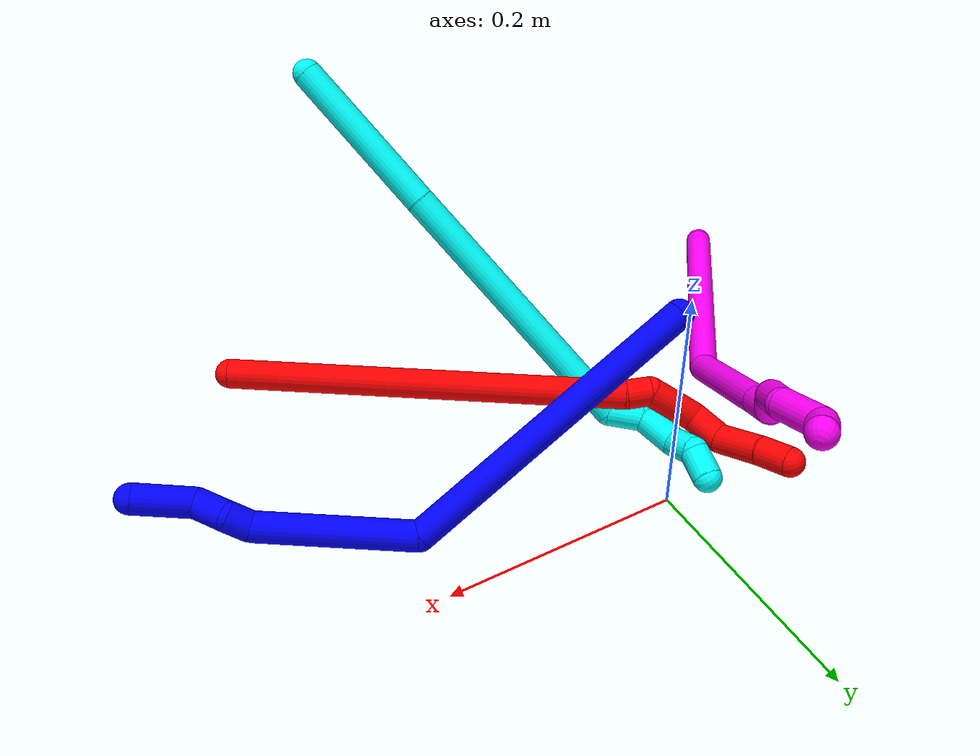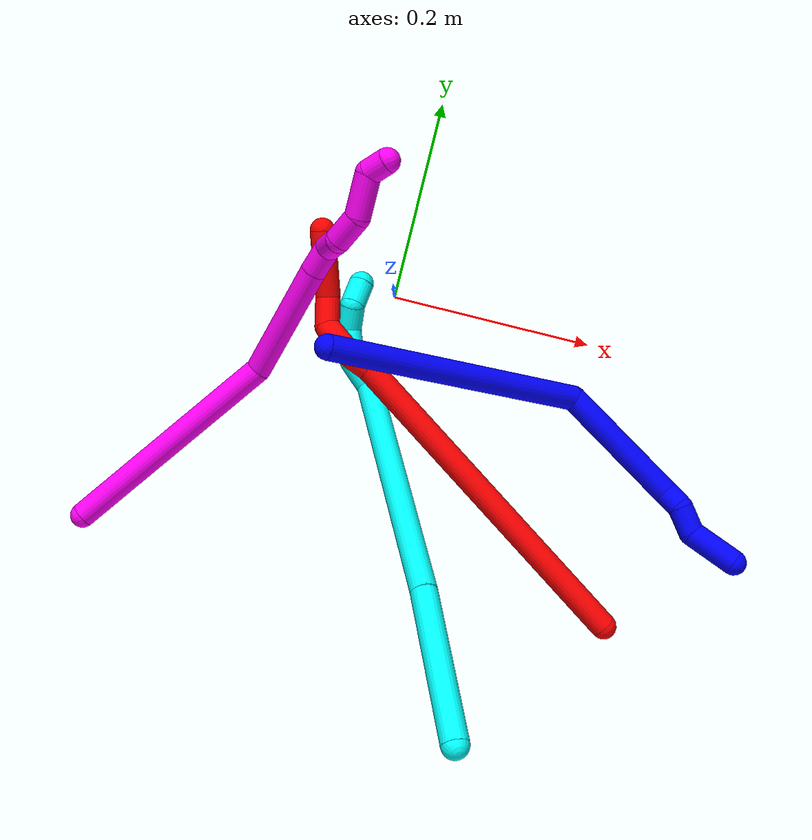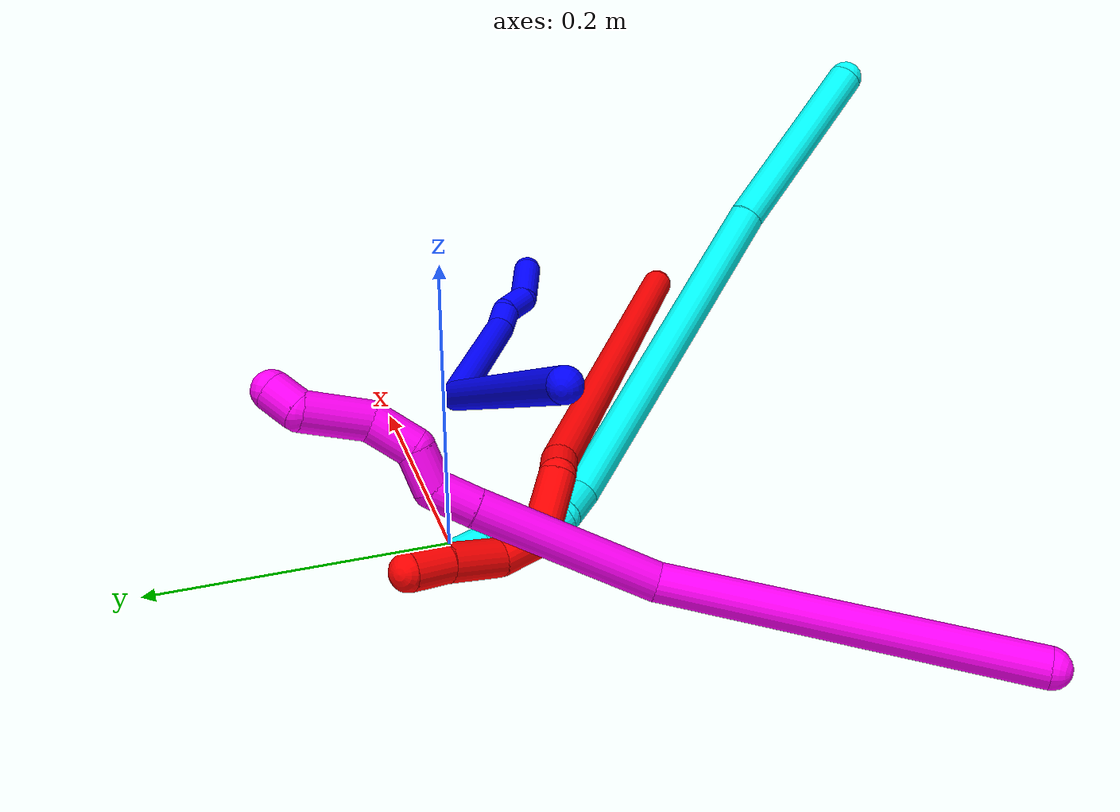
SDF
<sdf version="1.7">
 <world name="default">
  <model name="1">
   <static>0</static>
   <link name="1">
    <collision name="collision-cylinder-e_1_1_4">
     <pose>0.060408 -0.050287 0.110456 0.427228 0.461837 0.101915</pose>
     <geometry><cylinder><radius>0.0125</radius><length>0.271135</length></cylinder></geometry>
     <surface>
      <friction><ode><mu>1.16</mu><mu2>1.16</mu2><slip1>0</slip1><slip2>0</slip2></ode></friction>
      <contact><ode><kp>1e+06</kp><kd>1</kd><max_vel>0</max_vel><min_depth>0.001</min_depth></ode></contact>
     </surface>
    </collision>
    <visual name="visual-cylinder-e_1_1_4">
     <pose>0.060408 -0.050287 0.110456 0.427228 0.461837 0.101915</pose>
     <geometry><cylinder><radius>0.0125</radius><length>0.271135</length></cylinder></geometry>
     <material><ambient>0 0 1 1</ambient></material>
    </visual>
    <collision name="collision-cylinder-e_2_4_5">
     <pose>0.118556 -0.089332 0.285634 -0.171987 -0.034383 0.002964</pose>
     <geometry><cylinder><radius>0.0125</radius><length>0.13146</length></cylinder></geometry>
     <surface>
      <friction><ode><mu>1.16</mu><mu2>1.16</mu2><slip1>0</slip1><slip2>0</slip2></ode></friction>
      <contact><ode><kp>1e+06</kp><kd>1</kd><max_vel>0</max_vel><min_depth>0.001</min_depth></ode></contact>
     </surface>
    </collision>
    <visual name="visual-cylinder-e_2_4_5">
     <pose>0.118556 -0.089332 0.285634 -0.171987 -0.034383 0.002964</pose>
     <geometry><cylinder><radius>0.0125</radius><length>0.13146</length></cylinder></geometry>
     <material><ambient>0 0 1 1</ambient></material>
    </visual>
    <collision name="collision-cylinder-e_3_5_6">
     <pose>0.115973 -0.071719 0.358798 -0.646482 -0.030572 0.010242</pose>
     <geometry><cylinder><radius>0.0125</radius><length>0.021163</length></cylinder></geometry>
     <surface>
      <friction><ode><mu>1.16</mu><mu2>1.16</mu2><slip1>0</slip1><slip2>0</slip2></ode></friction>
      <contact><ode><kp>1e+06</kp><kd>1</kd><max_vel>0</max_vel><min_depth>0.001</min_depth></ode></contact>
     </surface>
    </collision>
    <visual name="visual-cylinder-e_3_5_6">
     <pose>0.115973 -0.071719 0.358798 -0.646482 -0.030572 0.010242</pose>
     <geometry><cylinder><radius>0.0125</radius><length>0.021163</length></cylinder></geometry>
     <material><ambient>0 0 1 1</ambient></material>
    </visual>
    <collision name="collision-cylinder-e_4_6_7">
     <pose>0.110298 -0.061851 0.379276 -0.282736 -0.403568 0.058211</pose>
     <geometry><cylinder><radius>0.0125</radius><length>0.027257</length></cylinder></geometry>
     <surface>
      <friction><ode><mu>1.16</mu><mu2>1.16</mu2><slip1>0</slip1><slip2>0</slip2></ode></friction>
      <contact><ode><kp>1e+06</kp><kd>1</kd><max_vel>0</max_vel><min_depth>0.001</min_depth></ode></contact>
     </surface>
    </collision>
    <visual name="visual-cylinder-e_4_6_7">
     <pose>0.110298 -0.061851 0.379276 -0.282736 -0.403568 0.058211</pose>
     <geometry><cylinder><radius>0.0125</radius><length>0.027257</length></cylinder></geometry>
     <material><ambient>0 0 1 1</ambient></material>
    </visual>
    <collision name="collision-cylinder-e_5_7_2">
     <pose>0.108742 -0.049977 0.414013 -0.353545 0.155615 -0.027853</pose>
     <geometry><cylinder><radius>0.0125</radius><length>0.048986</length></cylinder></geometry>
     <surface>
      <friction><ode><mu>1.16</mu><mu2>1.16</mu2><slip1>0</slip1><slip2>0</slip2></ode></friction>
      <contact><ode><kp>1e+06</kp><kd>1</kd><max_vel>0</max_vel><min_depth>0.001</min_depth></ode></contact>
     </surface>
    </collision>
    <visual name="visual-cylinder-e_5_7_2">
     <pose>0.108742 -0.049977 0.414013 -0.353545 0.155615 -0.027853</pose>
     <geometry><cylinder><radius>0.0125</radius><length>0.048986</length></cylinder></geometry>
     <material><ambient>0 0 1 1</ambient></material>
    </visual>
    <collision name="collision-sphere-2">
     <pose>0.112538 -0.041599 0.436713 0 -0 0</pose>
     <geometry><sphere><radius>0.0125</radius></sphere></geometry>
     <surface>
      <friction><ode><mu>1.16</mu><mu2>1.16</mu2><slip1>0</slip1><slip2>0</slip2></ode></friction>
      <contact><ode><kp>1e+06</kp><kd>1</kd><max_vel>0</max_vel><min_depth>0.001</min_depth></ode></contact>
     </surface>
    </collision>
    <visual name="visual-sphere-2">
     <pose>0.112538 -0.041599 0.436713 0 -0 0</pose>
     <geometry><sphere><radius>0.0125</radius></sphere></geometry>
     <material><ambient>0 0 1 1</ambient></material>
    </visual>
    <collision name="collision-sphere-7">
     <pose>0.104946 -0.058355 0.391313 0 -0 0</pose>
     <geometry><sphere><radius>0.0125</radius></sphere></geometry>
     <surface>
      <friction><ode><mu>1.16</mu><mu2>1.16</mu2><slip1>0</slip1><slip2>0</slip2></ode></friction>
      <contact><ode><kp>1e+06</kp><kd>1</kd><max_vel>0</max_vel><min_depth>0.001</min_depth></ode></contact>
     </surface>
    </collision>
    <visual name="visual-sphere-7">
     <pose>0.104946 -0.058355 0.391313 0 -0 0</pose>
     <geometry><sphere><radius>0.0125</radius></sphere></geometry>
     <material><ambient>0 0 1 1</ambient></material>
    </visual>
    <collision name="collision-sphere-6">
     <pose>0.11565 -0.065348 0.36724 0 -0 0</pose>
     <geometry><sphere><radius>0.0125</radius></sphere></geometry>
     <surface>
      <friction><ode><mu>1.16</mu><mu2>1.16</mu2><slip1>0</slip1><slip2>0</slip2></ode></friction>
      <contact><ode><kp>1e+06</kp><kd>1</kd><max_vel>0</max_vel><min_depth>0.001</min_depth></ode></contact>
     </surface>
    </collision>
    <visual name="visual-sphere-6">
     <pose>0.11565 -0.065348 0.36724 0 -0 0</pose>
     <geometry><sphere><radius>0.0125</radius></sphere></geometry>
     <material><ambient>0 0 1 1</ambient></material>
    </visual>
    <collision name="collision-sphere-5">
     <pose>0.116297 -0.07809 0.350356 0 -0 0</pose>
     <geometry><sphere><radius>0.0125</radius></sphere></geometry>
     <surface>
      <friction><ode><mu>1.16</mu><mu2>1.16</mu2><slip1>0</slip1><slip2>0</slip2></ode></friction>
      <contact><ode><kp>1e+06</kp><kd>1</kd><max_vel>0</max_vel><min_depth>0.001</min_depth></ode></contact>
     </surface>
    </collision>
    <visual name="visual-sphere-5">
     <pose>0.116297 -0.07809 0.350356 0 -0 0</pose>
     <geometry><sphere><radius>0.0125</radius></sphere></geometry>
     <material><ambient>0 0 1 1</ambient></material>
    </visual>
    <collision name="collision-sphere-1">
     <geometry><sphere><radius>0.0125</radius></sphere></geometry>
     <surface>
      <friction><ode><mu>1.16</mu><mu2>1.16</mu2><slip1>0</slip1><slip2>0</slip2></ode></friction>
      <contact><ode><kp>1e+06</kp><kd>1</kd><max_vel>0</max_vel><min_depth>0.001</min_depth></ode></contact>
     </surface>
    </collision>
    <visual name="visual-sphere-1">
     <geometry><sphere><radius>0.0125</radius></sphere></geometry>
     <material><ambient>0 0 1 1</ambient></material>
    </visual>
    <collision name="collision-sphere-4">
     <pose>0.120816 -0.100575 0.220912 0 -0 0</pose>
     <geometry><sphere><radius>0.0125</radius></sphere></geometry>
     <surface>
      <friction><ode><mu>1.16</mu><mu2>1.16</mu2><slip1>0</slip1><slip2>0</slip2></ode></friction>
      <contact><ode><kp>1e+06</kp><kd>1</kd><max_vel>0</max_vel><min_depth>0.001</min_depth></ode></contact>
     </surface>
    </collision>
    <visual name="visual-sphere-4">
     <pose>0.120816 -0.100575 0.220912 0 -0 0</pose>
     <geometry><sphere><radius>0.0125</radius></sphere></geometry>
     <material><ambient>0 0 1 1</ambient></material>
    </visual>
    <inertial>
     <pose>0.085503 -0.06206 0.21142 0 -0 0</pose>
     <mass>0.5</mass>
     <inertia>
      <ixx>0.00186</ixx>
      <ixy>0</ixy>
      <ixz>0</ixz>
      <iyy>0.001901</iyy>
      <iyz>0</iyz>
      <izz>-0.000124</izz>
     </inertia>
    </inertial>
   </link>
   <pose>-0.0463 -0.065961 0.129775 1.69762 -0.075373 1.05175</pose>
  </model>
  <model name="2">
   <static>0</static>
   <link name="2">
    <collision name="collision-cylinder-e_1_1_4">
     <pose>-0.030413 0.060938 -0.154097 -2.76501 -0.181513 0.891142</pose>
     <geometry><cylinder><radius>0.0125</radius><length>0.336953</length></cylinder></geometry>
     <surface>
      <friction><ode><mu>1.16</mu><mu2>1.16</mu2><slip1>0</slip1><slip2>0</slip2></ode></friction>
      <contact><ode><kp>1e+06</kp><kd>1</kd><max_vel>0</max_vel><min_depth>0.001</min_depth></ode></contact>
     </surface>
    </collision>
    <visual name="visual-cylinder-e_1_1_4">
     <pose>-0.030413 0.060938 -0.154097 -2.76501 -0.181513 0.891142</pose>
     <geometry><cylinder><radius>0.0125</radius><length>0.336953</length></cylinder></geometry>
     <material><ambient>1 0 0 1</ambient></material>
    </visual>
    <collision name="collision-cylinder-e_2_4_5">
     <pose>-0.060525 0.126444 -0.317573 -2.6884 0.028831 -0.124898</pose>
     <geometry><cylinder><radius>0.0125</radius><length>0.020872</length></cylinder></geometry>
     <surface>
      <friction><ode><mu>1.16</mu><mu2>1.16</mu2><slip1>0</slip1><slip2>0</slip2></ode></friction>
      <contact><ode><kp>1e+06</kp><kd>1</kd><max_vel>0</max_vel><min_depth>0.001</min_depth></ode></contact>
     </surface>
    </collision>
    <visual name="visual-cylinder-e_2_4_5">
     <pose>-0.060525 0.126444 -0.317573 -2.6884 0.028831 -0.124898</pose>
     <geometry><cylinder><radius>0.0125</radius><length>0.020872</length></cylinder></geometry>
     <material><ambient>1 0 0 1</ambient></material>
    </visual>
    <collision name="collision-cylinder-e_3_5_6">
     <pose>-0.071664 0.145927 -0.339797 -2.28174 -0.526466 1.06268</pose>
     <geometry><cylinder><radius>0.0125</radius><length>0.045534</length></cylinder></geometry>
     <surface>
      <friction><ode><mu>1.16</mu><mu2>1.16</mu2><slip1>0</slip1><slip2>0</slip2></ode></friction>
      <contact><ode><kp>1e+06</kp><kd>1</kd><max_vel>0</max_vel><min_depth>0.001</min_depth></ode></contact>
     </surface>
    </collision>
    <visual name="visual-cylinder-e_3_5_6">
     <pose>-0.071664 0.145927 -0.339797 -2.28174 -0.526466 1.06268</pose>
     <geometry><cylinder><radius>0.0125</radius><length>0.045534</length></cylinder></geometry>
     <material><ambient>1 0 0 1</ambient></material>
    </visual>
    <collision name="collision-cylinder-e_4_6_7">
     <pose>-0.094453 0.160007 -0.362567 3.05764 -0.850475 -2.95664</pose>
     <geometry><cylinder><radius>0.0125</radius><length>0.0302</length></cylinder></geometry>
     <surface>
      <friction><ode><mu>1.16</mu><mu2>1.16</mu2><slip1>0</slip1><slip2>0</slip2></ode></friction>
      <contact><ode><kp>1e+06</kp><kd>1</kd><max_vel>0</max_vel><min_depth>0.001</min_depth></ode></contact>
     </surface>
    </collision>
    <visual name="visual-cylinder-e_4_6_7">
     <pose>-0.094453 0.160007 -0.362567 3.05764 -0.850475 -2.95664</pose>
     <geometry><cylinder><radius>0.0125</radius><length>0.0302</length></cylinder></geometry>
     <material><ambient>1 0 0 1</ambient></material>
    </visual>
    <collision name="collision-cylinder-e_5_7_8">
     <pose>-0.114268 0.153287 -0.389396 2.80659 -0.441794 -1.85082</pose>
     <geometry><cylinder><radius>0.0125</radius><length>0.0396</length></cylinder></geometry>
     <surface>
      <friction><ode><mu>1.16</mu><mu2>1.16</mu2><slip1>0</slip1><slip2>0</slip2></ode></friction>
      <contact><ode><kp>1e+06</kp><kd>1</kd><max_vel>0</max_vel><min_depth>0.001</min_depth></ode></contact>
     </surface>
    </collision>
    <visual name="visual-cylinder-e_5_7_8">
     <pose>-0.114268 0.153287 -0.389396 2.80659 -0.441794 -1.85082</pose>
     <geometry><cylinder><radius>0.0125</radius><length>0.0396</length></cylinder></geometry>
     <material><ambient>1 0 0 1</ambient></material>
    </visual>
    <collision name="collision-cylinder-e_6_8_2">
     <pose>-0.129403 0.144486 -0.417575 2.88848 -0.520087 -2.24945</pose>
     <geometry><cylinder><radius>0.0125</radius><length>0.02684</length></cylinder></geometry>
     <surface>
      <friction><ode><mu>1.16</mu><mu2>1.16</mu2><slip1>0</slip1><slip2>0</slip2></ode></friction>
      <contact><ode><kp>1e+06</kp><kd>1</kd><max_vel>0</max_vel><min_depth>0.001</min_depth></ode></contact>
     </surface>
    </collision>
    <visual name="visual-cylinder-e_6_8_2">
     <pose>-0.129403 0.144486 -0.417575 2.88848 -0.520087 -2.24945</pose>
     <geometry><cylinder><radius>0.0125</radius><length>0.02684</length></cylinder></geometry>
     <material><ambient>1 0 0 1</ambient></material>
    </visual>
    <collision name="collision-sphere-2">
     <pose>-0.136072 0.14157 -0.42885 0 -0 0</pose>
     <geometry><sphere><radius>0.0125</radius></sphere></geometry>
     <surface>
      <friction><ode><mu>1.16</mu><mu2>1.16</mu2><slip1>0</slip1><slip2>0</slip2></ode></friction>
      <contact><ode><kp>1e+06</kp><kd>1</kd><max_vel>0</max_vel><min_depth>0.001</min_depth></ode></contact>
     </surface>
    </collision>
    <visual name="visual-sphere-2">
     <pose>-0.136072 0.14157 -0.42885 0 -0 0</pose>
     <geometry><sphere><radius>0.0125</radius></sphere></geometry>
     <material><ambient>1 0 0 1</ambient></material>
    </visual>
    <collision name="collision-sphere-4">
     <pose>-0.060826 0.121877 -0.308195 0 -0 0</pose>
     <geometry><sphere><radius>0.0125</radius></sphere></geometry>
     <surface>
      <friction><ode><mu>1.16</mu><mu2>1.16</mu2><slip1>0</slip1><slip2>0</slip2></ode></friction>
      <contact><ode><kp>1e+06</kp><kd>1</kd><max_vel>0</max_vel><min_depth>0.001</min_depth></ode></contact>
     </surface>
    </collision>
    <visual name="visual-sphere-4">
     <pose>-0.060826 0.121877 -0.308195 0 -0 0</pose>
     <geometry><sphere><radius>0.0125</radius></sphere></geometry>
     <material><ambient>1 0 0 1</ambient></material>
    </visual>
    <collision name="collision-sphere-1">
     <geometry><sphere><radius>0.0125</radius></sphere></geometry>
     <surface>
      <friction><ode><mu>1.16</mu><mu2>1.16</mu2><slip1>0</slip1><slip2>0</slip2></ode></friction>
      <contact><ode><kp>1e+06</kp><kd>1</kd><max_vel>0</max_vel><min_depth>0.001</min_depth></ode></contact>
     </surface>
    </collision>
    <visual name="visual-sphere-1">
     <geometry><sphere><radius>0.0125</radius></sphere></geometry>
     <material><ambient>1 0 0 1</ambient></material>
    </visual>
    <collision name="collision-sphere-8">
     <pose>-0.122734 0.147402 -0.4063 0 -0 0</pose>
     <geometry><sphere><radius>0.0125</radius></sphere></geometry>
     <surface>
      <friction><ode><mu>1.16</mu><mu2>1.16</mu2><slip1>0</slip1><slip2>0</slip2></ode></friction>
      <contact><ode><kp>1e+06</kp><kd>1</kd><max_vel>0</max_vel><min_depth>0.001</min_depth></ode></contact>
     </surface>
    </collision>
    <visual name="visual-sphere-8">
     <pose>-0.122734 0.147402 -0.4063 0 -0 0</pose>
     <geometry><sphere><radius>0.0125</radius></sphere></geometry>
     <material><ambient>1 0 0 1</ambient></material>
    </visual>
    <collision name="collision-sphere-5">
     <pose>-0.060224 0.131011 -0.326952 0 -0 0</pose>
     <geometry><sphere><radius>0.0125</radius></sphere></geometry>
     <surface>
      <friction><ode><mu>1.16</mu><mu2>1.16</mu2><slip1>0</slip1><slip2>0</slip2></ode></friction>
      <contact><ode><kp>1e+06</kp><kd>1</kd><max_vel>0</max_vel><min_depth>0.001</min_depth></ode></contact>
     </surface>
    </collision>
    <visual name="visual-sphere-5">
     <pose>-0.060224 0.131011 -0.326952 0 -0 0</pose>
     <geometry><sphere><radius>0.0125</radius></sphere></geometry>
     <material><ambient>1 0 0 1</ambient></material>
    </visual>
    <collision name="collision-sphere-6">
     <pose>-0.083104 0.160842 -0.352642 0 -0 0</pose>
     <geometry><sphere><radius>0.0125</radius></sphere></geometry>
     <surface>
      <friction><ode><mu>1.16</mu><mu2>1.16</mu2><slip1>0</slip1><slip2>0</slip2></ode></friction>
      <contact><ode><kp>1e+06</kp><kd>1</kd><max_vel>0</max_vel><min_depth>0.001</min_depth></ode></contact>
     </surface>
    </collision>
    <visual name="visual-sphere-6">
     <pose>-0.083104 0.160842 -0.352642 0 -0 0</pose>
     <geometry><sphere><radius>0.0125</radius></sphere></geometry>
     <material><ambient>1 0 0 1</ambient></material>
    </visual>
    <collision name="collision-sphere-7">
     <pose>-0.105802 0.159172 -0.372492 0 -0 0</pose>
     <geometry><sphere><radius>0.0125</radius></sphere></geometry>
     <surface>
      <friction><ode><mu>1.16</mu><mu2>1.16</mu2><slip1>0</slip1><slip2>0</slip2></ode></friction>
      <contact><ode><kp>1e+06</kp><kd>1</kd><max_vel>0</max_vel><min_depth>0.001</min_depth></ode></contact>
     </surface>
    </collision>
    <visual name="visual-sphere-7">
     <pose>-0.105802 0.159172 -0.372492 0 -0 0</pose>
     <geometry><sphere><radius>0.0125</radius></sphere></geometry>
     <material><ambient>1 0 0 1</ambient></material>
    </visual>
    <inertial>
     <pose>-0.05125 0.089195 -0.223204 0 -0 0</pose>
     <mass>0.5</mass>
     <inertia>
      <ixx>0.004417</ixx>
      <ixy>0</ixy>
      <ixz>0</ixz>
      <iyy>0.00076</iyy>
      <iyz>0</iyz>
      <izz>-0.000606</izz>
     </inertia>
    </inertial>
   </link>
   <pose>0.273063 -0.263285 0.057306 -2.07994 -0.667553 -1.93671</pose>
  </model>
  <model name="3">
   <static>0</static>
   <link name="3">
    <collision name="collision-cylinder-e_1_1_4">
     <pose>0.003489 0.028639 -0.065552 -2.7297 0.048728 -0.232246</pose>
     <geometry><cylinder><radius>0.0125</radius><length>0.14324</length></cylinder></geometry>
     <surface>
      <friction><ode><mu>1.16</mu><mu2>1.16</mu2><slip1>0</slip1><slip2>0</slip2></ode></friction>
      <contact><ode><kp>1e+06</kp><kd>1</kd><max_vel>0</max_vel><min_depth>0.001</min_depth></ode></contact>
     </surface>
    </collision>
    <visual name="visual-cylinder-e_1_1_4">
     <pose>0.003489 0.028639 -0.065552 -2.7297 0.048728 -0.232246</pose>
     <geometry><cylinder><radius>0.0125</radius><length>0.14324</length></cylinder></geometry>
     <material><ambient>0.003922 1 0.996078 1</ambient></material>
    </visual>
    <collision name="collision-cylinder-e_2_4_5">
     <pose>0.008766 0.098753 -0.24479 -2.79177 0.01478 -0.083589</pose>
     <geometry><cylinder><radius>0.0125</radius><length>0.242057</length></cylinder></geometry>
     <surface>
      <friction><ode><mu>1.16</mu><mu2>1.16</mu2><slip1>0</slip1><slip2>0</slip2></ode></friction>
      <contact><ode><kp>1e+06</kp><kd>1</kd><max_vel>0</max_vel><min_depth>0.001</min_depth></ode></contact>
     </surface>
    </collision>
    <visual name="visual-cylinder-e_2_4_5">
     <pose>0.008766 0.098753 -0.24479 -2.79177 0.01478 -0.083589</pose>
     <geometry><cylinder><radius>0.0125</radius><length>0.242057</length></cylinder></geometry>
     <material><ambient>0.003922 1 0.996078 1</ambient></material>
    </visual>
    <collision name="collision-cylinder-e_3_5_6">
     <pose>0.003213 0.15024 -0.367051 -2.27899 -0.508147 1.0275</pose>
     <geometry><cylinder><radius>0.0125</radius><length>0.030177</length></cylinder></geometry>
     <surface>
      <friction><ode><mu>1.16</mu><mu2>1.16</mu2><slip1>0</slip1><slip2>0</slip2></ode></friction>
      <contact><ode><kp>1e+06</kp><kd>1</kd><max_vel>0</max_vel><min_depth>0.001</min_depth></ode></contact>
     </surface>
    </collision>
    <visual name="visual-cylinder-e_3_5_6">
     <pose>0.003213 0.15024 -0.367051 -2.27899 -0.508147 1.0275</pose>
     <geometry><cylinder><radius>0.0125</radius><length>0.030177</length></cylinder></geometry>
     <material><ambient>0.003922 1 0.996078 1</ambient></material>
    </visual>
    <collision name="collision-cylinder-e_4_6_7">
     <pose>-0.003724 0.17144 -0.387781 -2.39765 0.024491 -0.062759</pose>
     <geometry><cylinder><radius>0.0125</radius><length>0.033052</length></cylinder></geometry>
     <surface>
      <friction><ode><mu>1.16</mu><mu2>1.16</mu2><slip1>0</slip1><slip2>0</slip2></ode></friction>
      <contact><ode><kp>1e+06</kp><kd>1</kd><max_vel>0</max_vel><min_depth>0.001</min_depth></ode></contact>
     </surface>
    </collision>
    <visual name="visual-cylinder-e_4_6_7">
     <pose>-0.003724 0.17144 -0.387781 -2.39765 0.024491 -0.062759</pose>
     <geometry><cylinder><radius>0.0125</radius><length>0.033052</length></cylinder></geometry>
     <material><ambient>0.003922 1 0.996078 1</ambient></material>
    </visual>
    <collision name="collision-cylinder-e_5_7_8">
     <pose>-0.001992 0.195581 -0.40145 -1.68698 0.101392 -0.113889</pose>
     <geometry><cylinder><radius>0.0125</radius><length>0.026217</length></cylinder></geometry>
     <surface>
      <friction><ode><mu>1.16</mu><mu2>1.16</mu2><slip1>0</slip1><slip2>0</slip2></ode></friction>
      <contact><ode><kp>1e+06</kp><kd>1</kd><max_vel>0</max_vel><min_depth>0.001</min_depth></ode></contact>
     </surface>
    </collision>
    <visual name="visual-cylinder-e_5_7_8">
     <pose>-0.001992 0.195581 -0.40145 -1.68698 0.101392 -0.113889</pose>
     <geometry><cylinder><radius>0.0125</radius><length>0.026217</length></cylinder></geometry>
     <material><ambient>0.003922 1 0.996078 1</ambient></material>
    </visual>
    <collision name="collision-cylinder-e_6_8_2">
     <pose>0.005206 0.216325 -0.410981 -2.37075 0.483549 -1.09229</pose>
     <geometry><cylinder><radius>0.0125</radius><length>0.025257</length></cylinder></geometry>
     <surface>
      <friction><ode><mu>1.16</mu><mu2>1.16</mu2><slip1>0</slip1><slip2>0</slip2></ode></friction>
      <contact><ode><kp>1e+06</kp><kd>1</kd><max_vel>0</max_vel><min_depth>0.001</min_depth></ode></contact>
     </surface>
    </collision>
    <visual name="visual-cylinder-e_6_8_2">
     <pose>0.005206 0.216325 -0.410981 -2.37075 0.483549 -1.09229</pose>
     <geometry><cylinder><radius>0.0125</radius><length>0.025257</length></cylinder></geometry>
     <material><ambient>0.003922 1 0.996078 1</ambient></material>
    </visual>
    <collision name="collision-sphere-2">
     <pose>0.011077 0.224115 -0.419002 0 -0 0</pose>
     <geometry><sphere><radius>0.0125</radius></sphere></geometry>
     <surface>
      <friction><ode><mu>1.16</mu><mu2>1.16</mu2><slip1>0</slip1><slip2>0</slip2></ode></friction>
      <contact><ode><kp>1e+06</kp><kd>1</kd><max_vel>0</max_vel><min_depth>0.001</min_depth></ode></contact>
     </surface>
    </collision>
    <visual name="visual-sphere-2">
     <pose>0.011077 0.224115 -0.419002 0 -0 0</pose>
     <geometry><sphere><radius>0.0125</radius></sphere></geometry>
     <material><ambient>0.003922 1 0.996078 1</ambient></material>
    </visual>
    <collision name="collision-sphere-4">
     <pose>0.006977 0.057277 -0.131104 0 -0 0</pose>
     <geometry><sphere><radius>0.0125</radius></sphere></geometry>
     <surface>
      <friction><ode><mu>1.16</mu><mu2>1.16</mu2><slip1>0</slip1><slip2>0</slip2></ode></friction>
      <contact><ode><kp>1e+06</kp><kd>1</kd><max_vel>0</max_vel><min_depth>0.001</min_depth></ode></contact>
     </surface>
    </collision>
    <visual name="visual-sphere-4">
     <pose>0.006977 0.057277 -0.131104 0 -0 0</pose>
     <geometry><sphere><radius>0.0125</radius></sphere></geometry>
     <material><ambient>0.003922 1 0.996078 1</ambient></material>
    </visual>
    <collision name="collision-sphere-1">
     <geometry><sphere><radius>0.0125</radius></sphere></geometry>
     <surface>
      <friction><ode><mu>1.16</mu><mu2>1.16</mu2><slip1>0</slip1><slip2>0</slip2></ode></friction>
      <contact><ode><kp>1e+06</kp><kd>1</kd><max_vel>0</max_vel><min_depth>0.001</min_depth></ode></contact>
     </surface>
    </collision>
    <visual name="visual-sphere-1">
     <geometry><sphere><radius>0.0125</radius></sphere></geometry>
     <material><ambient>0.003922 1 0.996078 1</ambient></material>
    </visual>
    <collision name="collision-sphere-8">
     <pose>-0.000665 0.208535 -0.402961 0 -0 0</pose>
     <geometry><sphere><radius>0.0125</radius></sphere></geometry>
     <surface>
      <friction><ode><mu>1.16</mu><mu2>1.16</mu2><slip1>0</slip1><slip2>0</slip2></ode></friction>
      <contact><ode><kp>1e+06</kp><kd>1</kd><max_vel>0</max_vel><min_depth>0.001</min_depth></ode></contact>
     </surface>
    </collision>
    <visual name="visual-sphere-8">
     <pose>-0.000665 0.208535 -0.402961 0 -0 0</pose>
     <geometry><sphere><radius>0.0125</radius></sphere></geometry>
     <material><ambient>0.003922 1 0.996078 1</ambient></material>
    </visual>
    <collision name="collision-sphere-5">
     <pose>0.010554 0.140228 -0.358476 0 -0 0</pose>
     <geometry><sphere><radius>0.0125</radius></sphere></geometry>
     <surface>
      <friction><ode><mu>1.16</mu><mu2>1.16</mu2><slip1>0</slip1><slip2>0</slip2></ode></friction>
      <contact><ode><kp>1e+06</kp><kd>1</kd><max_vel>0</max_vel><min_depth>0.001</min_depth></ode></contact>
     </surface>
    </collision>
    <visual name="visual-sphere-5">
     <pose>0.010554 0.140228 -0.358476 0 -0 0</pose>
     <geometry><sphere><radius>0.0125</radius></sphere></geometry>
     <material><ambient>0.003922 1 0.996078 1</ambient></material>
    </visual>
    <collision name="collision-sphere-6">
     <pose>-0.004128 0.160252 -0.375625 0 -0 0</pose>
     <geometry><sphere><radius>0.0125</radius></sphere></geometry>
     <surface>
      <friction><ode><mu>1.16</mu><mu2>1.16</mu2><slip1>0</slip1><slip2>0</slip2></ode></friction>
      <contact><ode><kp>1e+06</kp><kd>1</kd><max_vel>0</max_vel><min_depth>0.001</min_depth></ode></contact>
     </surface>
    </collision>
    <visual name="visual-sphere-6">
     <pose>-0.004128 0.160252 -0.375625 0 -0 0</pose>
     <geometry><sphere><radius>0.0125</radius></sphere></geometry>
     <material><ambient>0.003922 1 0.996078 1</ambient></material>
    </visual>
    <collision name="collision-sphere-7">
     <pose>-0.003319 0.182628 -0.399938 0 -0 0</pose>
     <geometry><sphere><radius>0.0125</radius></sphere></geometry>
     <surface>
      <friction><ode><mu>1.16</mu><mu2>1.16</mu2><slip1>0</slip1><slip2>0</slip2></ode></friction>
      <contact><ode><kp>1e+06</kp><kd>1</kd><max_vel>0</max_vel><min_depth>0.001</min_depth></ode></contact>
     </surface>
    </collision>
    <visual name="visual-sphere-7">
     <pose>-0.003319 0.182628 -0.399938 0 -0 0</pose>
     <geometry><sphere><radius>0.0125</radius></sphere></geometry>
     <material><ambient>0.003922 1 0.996078 1</ambient></material>
    </visual>
    <inertial>
     <pose>0.005349 0.097595 -0.226883 0 -0 0</pose>
     <mass>0.5</mass>
     <inertia>
      <ixx>0.001284</ixx>
      <ixy>0</ixy>
      <ixz>0</ixz>
      <iyy>-0.00148</iyy>
      <iyz>0</iyz>
      <izz>-0.00058</izz>
     </inertia>
    </inertial>
   </link>
   <pose>0.141015 -0.357655 0.263747 0.501543 0.292744 0.293979</pose>
  </model>
  <model name="10">
   <static>0</static>
   <link name="10">
    <collision name="collision-cylinder-e_1_1_4">
     <pose>0.00332 0.037103 -0.108101 -2.81097 0.029044 -0.173659</pose>
     <geometry><cylinder><radius>0.0125</radius><length>0.228678</length></cylinder></geometry>
     <surface>
      <friction><ode><mu>1.16</mu><mu2>1.16</mu2><slip1>0</slip1><slip2>0</slip2></ode></friction>
      <contact><ode><kp>1e+06</kp><kd>1</kd><max_vel>0</max_vel><min_depth>0.001</min_depth></ode></contact>
     </surface>
    </collision>
    <visual name="visual-cylinder-e_1_1_4">
     <pose>0.00332 0.037103 -0.108101 -2.81097 0.029044 -0.173659</pose>
     <geometry><cylinder><radius>0.0125</radius><length>0.228678</length></cylinder></geometry>
     <material><ambient>1 0 0.964706 1</ambient></material>
    </visual>
    <collision name="collision-cylinder-e_2_4_5">
     <pose>0.025833 0.11444 -0.258002 -2.37529 0.319471 -0.760502</pose>
     <geometry><cylinder><radius>0.0125</radius><length>0.122221</length></cylinder></geometry>
     <surface>
      <friction><ode><mu>1.16</mu><mu2>1.16</mu2><slip1>0</slip1><slip2>0</slip2></ode></friction>
      <contact><ode><kp>1e+06</kp><kd>1</kd><max_vel>0</max_vel><min_depth>0.001</min_depth></ode></contact>
     </surface>
    </collision>
    <visual name="visual-cylinder-e_2_4_5">
     <pose>0.025833 0.11444 -0.258002 -2.37529 0.319471 -0.760502</pose>
     <geometry><cylinder><radius>0.0125</radius><length>0.122221</length></cylinder></geometry>
     <material><ambient>1 0 0.964706 1</ambient></material>
    </visual>
    <collision name="collision-cylinder-e_3_5_6">
     <pose>0.049722 0.163348 -0.30961 -2.41741 0.344425 -0.860924</pose>
     <geometry><cylinder><radius>0.0125</radius><length>0.027817</length></cylinder></geometry>
     <surface>
      <friction><ode><mu>1.16</mu><mu2>1.16</mu2><slip1>0</slip1><slip2>0</slip2></ode></friction>
      <contact><ode><kp>1e+06</kp><kd>1</kd><max_vel>0</max_vel><min_depth>0.001</min_depth></ode></contact>
     </surface>
    </collision>
    <visual name="visual-cylinder-e_3_5_6">
     <pose>0.049722 0.163348 -0.30961 -2.41741 0.344425 -0.860924</pose>
     <geometry><cylinder><radius>0.0125</radius><length>0.027817</length></cylinder></geometry>
     <material><ambient>1 0 0.964706 1</ambient></material>
    </visual>
    <collision name="collision-cylinder-e_4_6_7">
     <pose>0.066085 0.17606 -0.324345 -2.45519 1.07089 -2.05731</pose>
     <geometry><cylinder><radius>0.0125</radius><length>0.026587</length></cylinder></geometry>
     <surface>
      <friction><ode><mu>1.16</mu><mu2>1.16</mu2><slip1>0</slip1><slip2>0</slip2></ode></friction>
      <contact><ode><kp>1e+06</kp><kd>1</kd><max_vel>0</max_vel><min_depth>0.001</min_depth></ode></contact>
     </surface>
    </collision>
    <visual name="visual-cylinder-e_4_6_7">
     <pose>0.066085 0.17606 -0.324345 -2.45519 1.07089 -2.05731</pose>
     <geometry><cylinder><radius>0.0125</radius><length>0.026587</length></cylinder></geometry>
     <material><ambient>1 0 0.964706 1</ambient></material>
    </visual>
    <collision name="collision-cylinder-e_5_7_8">
     <pose>0.084418 0.188071 -0.340785 -2.5358 0.444361 -1.25183</pose>
     <geometry><cylinder><radius>0.0125</radius><length>0.031017</length></cylinder></geometry>
     <surface>
      <friction><ode><mu>1.16</mu><mu2>1.16</mu2><slip1>0</slip1><slip2>0</slip2></ode></friction>
      <contact><ode><kp>1e+06</kp><kd>1</kd><max_vel>0</max_vel><min_depth>0.001</min_depth></ode></contact>
     </surface>
    </collision>
    <visual name="visual-cylinder-e_5_7_8">
     <pose>0.084418 0.188071 -0.340785 -2.5358 0.444361 -1.25183</pose>
     <geometry><cylinder><radius>0.0125</radius><length>0.031017</length></cylinder></geometry>
     <material><ambient>1 0 0.964706 1</ambient></material>
    </visual>
    <collision name="collision-cylinder-e_6_8_9">
     <pose>0.093149 0.213685 -0.363876 -2.15173 0.097476 -0.180251</pose>
     <geometry><cylinder><radius>0.0125</radius><length>0.042405</length></cylinder></geometry>
     <surface>
      <friction><ode><mu>1.16</mu><mu2>1.16</mu2><slip1>0</slip1><slip2>0</slip2></ode></friction>
      <contact><ode><kp>1e+06</kp><kd>1</kd><max_vel>0</max_vel><min_depth>0.001</min_depth></ode></contact>
     </surface>
    </collision>
    <visual name="visual-cylinder-e_6_8_9">
     <pose>0.093149 0.213685 -0.363876 -2.15173 0.097476 -0.180251</pose>
     <geometry><cylinder><radius>0.0125</radius><length>0.042405</length></cylinder></geometry>
     <material><ambient>1 0 0.964706 1</ambient></material>
    </visual>
    <collision name="collision-cylinder-e_7_9_2">
     <pose>0.099807 0.234026 -0.384663 -2.85618 0.446685 -2.01351</pose>
     <geometry><cylinder><radius>0.0125</radius><length>0.021275</length></cylinder></geometry>
     <surface>
      <friction><ode><mu>1.16</mu><mu2>1.16</mu2><slip1>0</slip1><slip2>0</slip2></ode></friction>
      <contact><ode><kp>1e+06</kp><kd>1</kd><max_vel>0</max_vel><min_depth>0.001</min_depth></ode></contact>
     </surface>
    </collision>
    <visual name="visual-cylinder-e_7_9_2">
     <pose>0.099807 0.234026 -0.384663 -2.85618 0.446685 -2.01351</pose>
     <geometry><cylinder><radius>0.0125</radius><length>0.021275</length></cylinder></geometry>
     <material><ambient>1 0 0.964706 1</ambient></material>
    </visual>
    <collision name="collision-sphere-2">
     <pose>0.104403 0.236727 -0.393869 0 -0 0</pose>
     <geometry><sphere><radius>0.0125</radius></sphere></geometry>
     <surface>
      <friction><ode><mu>1.16</mu><mu2>1.16</mu2><slip1>0</slip1><slip2>0</slip2></ode></friction>
      <contact><ode><kp>1e+06</kp><kd>1</kd><max_vel>0</max_vel><min_depth>0.001</min_depth></ode></contact>
     </surface>
    </collision>
    <visual name="visual-sphere-2">
     <pose>0.104403 0.236727 -0.393869 0 -0 0</pose>
     <geometry><sphere><radius>0.0125</radius></sphere></geometry>
     <material><ambient>1 0 0.964706 1</ambient></material>
    </visual>
    <collision name="collision-sphere-9">
     <pose>0.095212 0.231325 -0.375457 0 -0 0</pose>
     <geometry><sphere><radius>0.0125</radius></sphere></geometry>
     <surface>
      <friction><ode><mu>1.16</mu><mu2>1.16</mu2><slip1>0</slip1><slip2>0</slip2></ode></friction>
      <contact><ode><kp>1e+06</kp><kd>1</kd><max_vel>0</max_vel><min_depth>0.001</min_depth></ode></contact>
     </surface>
    </collision>
    <visual name="visual-sphere-9">
     <pose>0.095212 0.231325 -0.375457 0 -0 0</pose>
     <geometry><sphere><radius>0.0125</radius></sphere></geometry>
     <material><ambient>1 0 0.964706 1</ambient></material>
    </visual>
    <collision name="collision-sphere-4">
     <pose>0.006641 0.074206 -0.216201 0 -0 0</pose>
     <geometry><sphere><radius>0.0125</radius></sphere></geometry>
     <surface>
      <friction><ode><mu>1.16</mu><mu2>1.16</mu2><slip1>0</slip1><slip2>0</slip2></ode></friction>
      <contact><ode><kp>1e+06</kp><kd>1</kd><max_vel>0</max_vel><min_depth>0.001</min_depth></ode></contact>
     </surface>
    </collision>
    <visual name="visual-sphere-4">
     <pose>0.006641 0.074206 -0.216201 0 -0 0</pose>
     <geometry><sphere><radius>0.0125</radius></sphere></geometry>
     <material><ambient>1 0 0.964706 1</ambient></material>
    </visual>
    <collision name="collision-sphere-1">
     <geometry><sphere><radius>0.0125</radius></sphere></geometry>
     <surface>
      <friction><ode><mu>1.16</mu><mu2>1.16</mu2><slip1>0</slip1><slip2>0</slip2></ode></friction>
      <contact><ode><kp>1e+06</kp><kd>1</kd><max_vel>0</max_vel><min_depth>0.001</min_depth></ode></contact>
     </surface>
    </collision>
    <visual name="visual-sphere-1">
     <geometry><sphere><radius>0.0125</radius></sphere></geometry>
     <material><ambient>1 0 0.964706 1</ambient></material>
    </visual>
    <collision name="collision-sphere-8">
     <pose>0.091085 0.196044 -0.352296 0 -0 0</pose>
     <geometry><sphere><radius>0.0125</radius></sphere></geometry>
     <surface>
      <friction><ode><mu>1.16</mu><mu2>1.16</mu2><slip1>0</slip1><slip2>0</slip2></ode></friction>
      <contact><ode><kp>1e+06</kp><kd>1</kd><max_vel>0</max_vel><min_depth>0.001</min_depth></ode></contact>
     </surface>
    </collision>
    <visual name="visual-sphere-8">
     <pose>0.091085 0.196044 -0.352296 0 -0 0</pose>
     <geometry><sphere><radius>0.0125</radius></sphere></geometry>
     <material><ambient>1 0 0.964706 1</ambient></material>
    </visual>
    <collision name="collision-sphere-5">
     <pose>0.045026 0.154674 -0.299804 0 -0 0</pose>
     <geometry><sphere><radius>0.0125</radius></sphere></geometry>
     <surface>
      <friction><ode><mu>1.16</mu><mu2>1.16</mu2><slip1>0</slip1><slip2>0</slip2></ode></friction>
      <contact><ode><kp>1e+06</kp><kd>1</kd><max_vel>0</max_vel><min_depth>0.001</min_depth></ode></contact>
     </surface>
    </collision>
    <visual name="visual-sphere-5">
     <pose>0.045026 0.154674 -0.299804 0 -0 0</pose>
     <geometry><sphere><radius>0.0125</radius></sphere></geometry>
     <material><ambient>1 0 0.964706 1</ambient></material>
    </visual>
    <collision name="collision-sphere-6">
     <pose>0.054419 0.172021 -0.319416 0 -0 0</pose>
     <geometry><sphere><radius>0.0125</radius></sphere></geometry>
     <surface>
      <friction><ode><mu>1.16</mu><mu2>1.16</mu2><slip1>0</slip1><slip2>0</slip2></ode></friction>
      <contact><ode><kp>1e+06</kp><kd>1</kd><max_vel>0</max_vel><min_depth>0.001</min_depth></ode></contact>
     </surface>
    </collision>
    <visual name="visual-sphere-6">
     <pose>0.054419 0.172021 -0.319416 0 -0 0</pose>
     <geometry><sphere><radius>0.0125</radius></sphere></geometry>
     <material><ambient>1 0 0.964706 1</ambient></material>
    </visual>
    <collision name="collision-sphere-7">
     <pose>0.077752 0.180098 -0.329274 0 -0 0</pose>
     <geometry><sphere><radius>0.0125</radius></sphere></geometry>
     <surface>
      <friction><ode><mu>1.16</mu><mu2>1.16</mu2><slip1>0</slip1><slip2>0</slip2></ode></friction>
      <contact><ode><kp>1e+06</kp><kd>1</kd><max_vel>0</max_vel><min_depth>0.001</min_depth></ode></contact>
     </surface>
    </collision>
    <visual name="visual-sphere-7">
     <pose>0.077752 0.180098 -0.329274 0 -0 0</pose>
     <geometry><sphere><radius>0.0125</radius></sphere></geometry>
     <material><ambient>1 0 0.964706 1</ambient></material>
    </visual>
    <inertial>
     <pose>0.031497 0.10314 -0.215347 0 -0 0</pose>
     <mass>0.5</mass>
     <inertia>
      <ixx>0.00083</ixx>
      <ixy>0</ixy>
      <ixz>0</ixz>
      <iyy>-0.001263</iyy>
      <iyz>0</iyz>
      <izz>-0.000557</izz>
     </inertia>
    </inertial>
   </link>
   <pose>-0.25021 -0.286625 0.01235 1.27411 -1.24703 -0.661101</pose>
  </model>
 </world>
</sdf>
